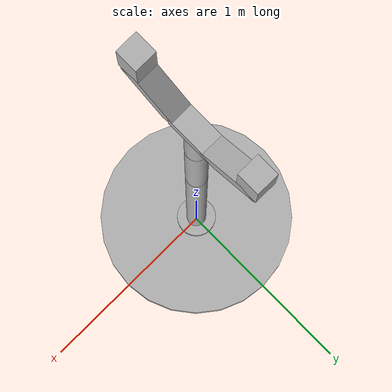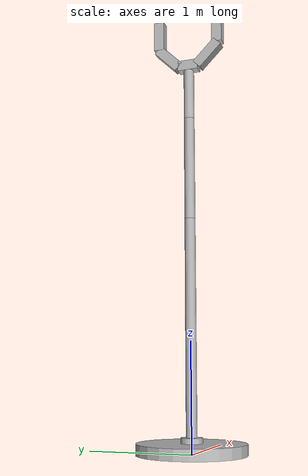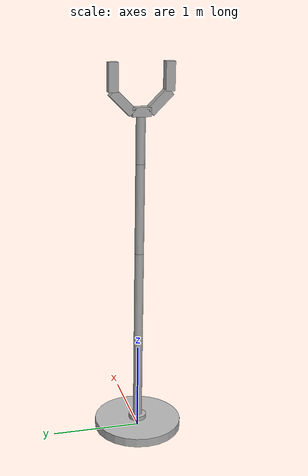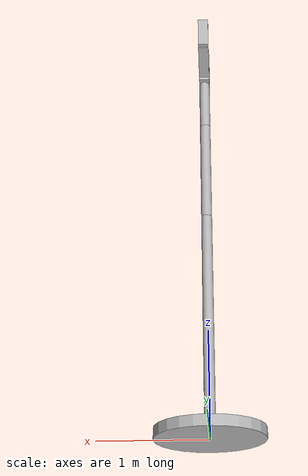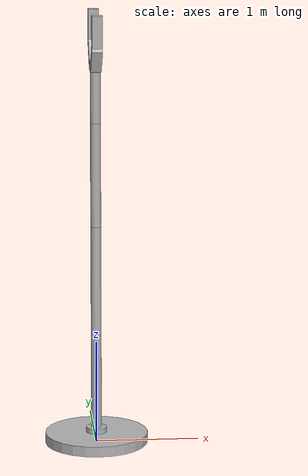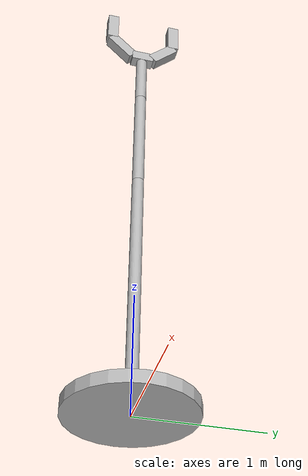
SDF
<?xml version='1.0'?>
<sdf version='1.4'>
    <model name="arm_robot">
        <self_collide>1</self_collide>
        <link name="base">
            <pose>0 0 .05 0 0 0</pose>
            <inertial>
                <mass>300</mass>
            </inertial>
            <collision name='collision'>
                <geometry>
                    <cylinder>
                        <radius>0.5</radius>
                        <length>.1</length>
                    </cylinder>
                </geometry>
            </collision>
            <visual name='visual'>
                <geometry>
                    <cylinder>
                        <radius>0.5</radius>
                        <length>.1</length>
                    </cylinder>
                </geometry>
            </visual>
        </link>
        <link name="arm1">
            <pose>0 0 0.125 0 0 0</pose>
            <gravity>0</gravity>
            <collision name='collision'>
                <geometry>
                    <cylinder>
                        <radius>0.1</radius>
                        <length>.05</length>
                    </cylinder>
                </geometry>
            </collision>
            <visual name='visual'>
                <geometry>
                    <cylinder>
                        <radius>0.1</radius>
                        <length>.05</length>
                    </cylinder>
                </geometry>
            </visual>
        </link>
        <link name="arm2">
            <pose>0 0 1.15 0 0 0</pose>
            <gravity>0</gravity>
            <collision name='collision'>
                <geometry>
                    <cylinder>
                        <radius>0.05</radius>
                        <length>2</length>
                    </cylinder>
                </geometry>
            </collision>
            <visual name='visual'>
                <geometry>
                    <cylinder>
                        <radius>0.05</radius>
                        <length>2</length>
                    </cylinder>
                </geometry>
            </visual>
        </link>
        <link name="arm3">
            <pose>0 0 2.65 0 0 0</pose>
            <gravity>0</gravity>
            <collision name='collision'>
                <geometry>
                    <cylinder>
                        <radius>0.05</radius>
                        <length>1</length>
                    </cylinder>
                </geometry>
            </collision>
            <visual name='visual'>
                <geometry>
                    <cylinder>
                        <radius>0.05</radius>
                        <length>1</length>
                    </cylinder>
                </geometry>
            </visual>
        </link>
        <link name="arm4">
            <pose>0 0 3.4 0 0 0</pose>
            <gravity>0</gravity>
            <collision name='collision'>
                <geometry>
                    <cylinder>
                        <radius>0.05</radius>
                        <length>0.5</length>
                    </cylinder>
                </geometry>
            </collision>
            <visual name='visual'>
                <geometry>
                    <cylinder>
                        <radius>0.05</radius>
                        <length>0.5</length>
                    </cylinder>
                </geometry>
            </visual>
        </link>
        <link name="palm">
        <gravity>0</gravity>
            <pose>0.0 0.0 3.7 0 0 0</pose>
            <inertial>

                <mass>0.1</mass>
            </inertial>
            <collision name="collision">
                <geometry>
                    <box>
                        <size>0.1 0.2 0.1</size>
                    </box>
                </geometry>
                                                <surface>
        <friction>
          <ode>
            <mu>100</mu>
            <mu2>100</mu2>
          </ode>
        </friction>
      </surface>
            </collision>
            <visual name="visual">
                <geometry>
                    <box>
                        <size>0.1 0.2 0.1</size>
                    </box>
                </geometry>
            </visual>
        </link>

        <link name="left_finger">
            <pose>0.0 0.2 3.8 -0.78539 0 0</pose>
            <gravity>0</gravity>
            <inertial>

                <mass>0.1</mass>
            </inertial>
            <collision name="collision">
                <geometry>
                    <box>
                        <size>0.1 0.1 0.3</size>
                    </box>
                </geometry>
                                                <surface>
        <friction>
          <ode>
            <mu>100</mu>
            <mu2>100</mu2>
          </ode>
        </friction>
      </surface>
            </collision>
            <visual name="visual">
                <geometry>
                    <box>
                        <size>0.1 0.1 0.3</size>
                    </box>
                </geometry>

            </visual>
        </link>

        <link name="right_finger">
            <pose>0.0 -0.2 3.8 0.78539 0 0</pose>
            <gravity>0</gravity>
            <inertial>

                <mass>0.1</mass>
            </inertial>
            <collision name="collision">
                <geometry>
                    <box>
                        <size>0.1 0.1 0.3</size>
                    </box>
                </geometry>
                <surface>
        <friction>
          <ode>
            <mu>100</mu>
            <mu2>100</mu2>
          </ode>
        </friction>
      </surface>
            </collision>
            <visual name="visual">
                <geometry>
                    <box>
                        <size>0.1 0.1 0.3</size>
                    </box>
                </geometry>
            </visual>
        </link>

        <link name="left_finger_tip">
            <pose>0.0 0.3 4.056 0 0 0</pose>
            <gravity>0</gravity>
            <inertial>

                <mass>0.1</mass>
            </inertial>
            <collision name="collision">
                <geometry>
                    <box>
                        <size>0.1 0.1 0.3</size>
                    </box>
                </geometry>
                                <surface>
        <friction>
          <ode>
            <mu>100</mu>
            <mu2>100</mu2>
          </ode>
        </friction>
      </surface>
            </collision>
            <visual name="visual">
                <geometry>
                    <box>
                        <size>0.1 0.1 0.3</size>
                    </box>
                </geometry>
            </visual>
        </link>
        <link name="right_finger_tip">
            <pose>0.0 -0.3 4.056 0 0 0</pose>
            <gravity>0</gravity>
            <inertial>

                <mass>0.1</mass>
            </inertial>
            <collision name="collision">
                <geometry>
                    <box>
                        <size>0.1 0.1 0.3</size>
                    </box>
                </geometry>
                <surface>
        <friction>
          <ode>
            <mu>100</mu>
            <mu2>100</mu2>
          </ode>
        </friction>
      </surface>
            </collision>
            <visual name="visual">
                <geometry>
                    <box>
                        <size>0.1 0.1 0.3</size>
                    </box>
                </geometry>
            </visual>
        </link>

        <!-- joints start here -->
        <joint name="base_with_arm1" type="revolute">
            <parent>base</parent>
            <child>arm1</child>
            <pose>0 -0.025 0 0 0 0</pose>
            <axis>
                <xyz>0 0 1</xyz>
                <dynamics>
                    <damping>1.0</damping>
                    <friction>0.5</friction>
                </dynamics>
                <limit>
                    <effort>100</effort>
                    <velocity>1.0</velocity>
                </limit>
            </axis>
        </joint>
        <joint name="arm1_with_arm2" type="revolute">
            <parent>arm1</parent>
            <child>arm2</child>
            <pose>0 0 -1 0 0 0</pose>
            <axis>
                <xyz>1 0 0</xyz>
                <dynamics>
                    <damping>1.0</damping>
                    <friction>0.5</friction>
                </dynamics>
                <limit>
                    <effort>100</effort>
                    <velocity>1.0</velocity>
                </limit>
            </axis>
        </joint>
        <joint name="arm2_with_arm3" type="revolute">
            <parent>arm2</parent>
            <child>arm3</child>
            <pose>0 0 -0.5 0 0 0</pose>
            <axis>
                <xyz>1 0 0</xyz>
                <dynamics>
                    <damping>1.0</damping>
                    <friction>0.5</friction>
                </dynamics>
                <limit>
                    <effort>100</effort>
                    <velocity>1.0</velocity>
                </limit>
            </axis>
        </joint>
        <joint name="arm3_with_arm4" type="revolute">
            <parent>arm3</parent>
            <child>arm4</child>
            <pose>0 0 -0.25 0 0 0</pose>
            <axis>
                <xyz>1 0 0</xyz>
                <dynamics>
                    <damping>1.0</damping>
                    <friction>0.5</friction>
                </dynamics>
                <limit>
                    <effort>100</effort>
                    <velocity>1.0</velocity>
                </limit>
            </axis>
        </joint>

        <joint name="arm4_with_palm" type="revolute">
            <parent>arm4</parent>
            <child>palm</child>
            <pose>0 0 -0.05 0 0 0</pose>
            <axis>
                <xyz>0 0 1</xyz>
                <dynamics>
                    <damping>1.0</damping>
                    <friction>0.5</friction>
                </dynamics>
                <limit>
                    <effort>100</effort>
                    <velocity>1.0</velocity>
                </limit>
            </axis>
        </joint>

        <joint name="palm_left_finger" type="revolute">
            <pose>0 0 -0.15 0 0 0</pose>
            <child>left_finger</child>
            <parent>palm</parent>
            <axis>
                <xyz>1 0 0</xyz>
                <dynamics>
                    <damping>1.0</damping>
                    <friction>0.5</friction>
                </dynamics>
                <limit>
                    <effort>100</effort>
                    <velocity>1.0</velocity>
                </limit>
            </axis>
        </joint>

        <joint name="palm_right_finger" type="revolute">
            <pose>0 0 -0.15 0 0 0</pose>
            <child>right_finger</child>
            <parent>palm</parent>
            <axis>
                <xyz>1 0 0</xyz>
                <dynamics>
                    <damping>1.0</damping>
                    <friction>0.5</friction>
                </dynamics>
                <limit>
                    <effort>100</effort>
                    <velocity>1.0</velocity>
                </limit>
            </axis>
        </joint>
        <joint name="left_finger_left_finger_tip" type="revolute">
            <pose>0 -0.05 -0.15 0 0 0</pose>
            <child>left_finger_tip</child>
            <parent>left_finger</parent>
            <axis>
                <xyz>1 0 0</xyz>
                <dynamics>
                    <damping>1.0</damping>
                    <friction>0.5</friction>
                </dynamics>
                <limit>
                    <effort>100</effort>
                    <velocity>1.0</velocity>
                </limit>
            </axis>
        </joint>
        <joint name="right_finger_right_finger_tip" type="revolute">
            <pose>0 0.05 -0.15 0 0 0</pose>
            <child>right_finger_tip</child>
            <parent>right_finger</parent>
            <axis>
                <xyz>1 0 0</xyz>
                <dynamics>
                    <damping>1.0</damping>
                    <friction>0.5</friction>
                </dynamics>
                <limit>
                    <effort>100</effort>
                    <velocity>1.0</velocity>
                </limit>
            </axis>
        </joint>

        <!-- plugin goes here -->
        <plugin name="world_plugin" filename="libworld_plugin.so" />
        <plugin name="set_angles_subscriber_plugin" filename="libset_angles_subscriber_plugin.so" />
    </model>
</sdf>
